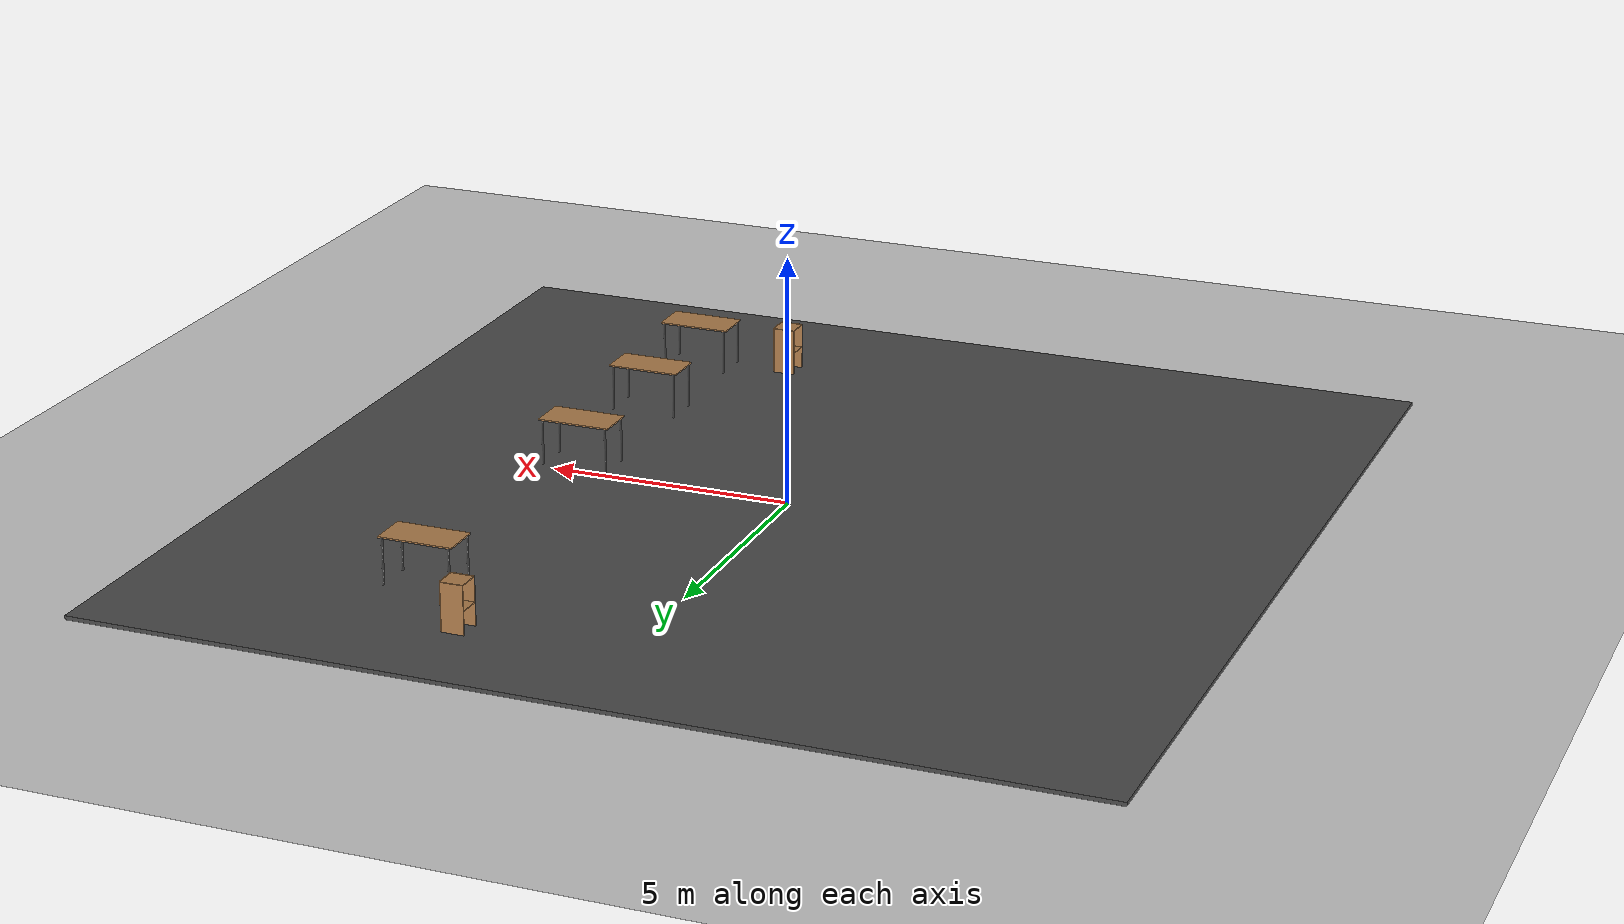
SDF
<sdf version="1.7">
 <world name="default">
  <model name="ground_plane">
   <static>1</static>
   <link name="link">
    <collision name="collision">
     <geometry><plane><normal>0 0 1</normal><size>100 100</size></plane></geometry>
     <surface>
      <contact><collide_bitmask>65535</collide_bitmask></contact>
      <friction><ode><mu>100</mu><mu2>50</mu2></ode></friction>
     </surface>
    </collision>
    <visual name="visual">
     <cast_shadows>0</cast_shadows>
     <geometry><plane><normal>0 0 1</normal><size>100 100</size></plane></geometry>
     <material>
      <script><uri>file://media/materials/scripts/gazebo.material</uri><name>Gazebo/Grey</name></script>
     </material>
    </visual>
   </link>
  </model>
  <model name="asphalt_plane">
   <static>1</static>
   <link name="link">
    <collision name="collision"><geometry><box><size>20 20 0.1</size></box></geometry></collision>
    <visual name="visual">
     <cast_shadows>0</cast_shadows>
     <geometry><box><size>20 20 0.1</size></box></geometry>
     <material>
      <script>
       <uri>model://asphalt_plane/materials/scripts</uri>
       <uri>model://asphalt_plane/materials/textures</uri>
       <name>vrc/asphalt</name>
      </script>
     </material>
    </visual>
   </link>
   <pose>0.032164 -0.016772 0 0 -0 0</pose>
  </model>
  <model name="cabinet_0">
   <static>1</static>
   <link name="cabinet_bottom_plate">
    <inertial>
     <pose>0 0 -1 0 -0 0</pose>
     <inertia><ixx>2.05</ixx><ixy>0</ixy><ixz>0</ixz><iyy>2.05</iyy><iyz>0</iyz><izz>2.05</izz></inertia>
     <mass>25</mass>
    </inertial>
    <collision name="cabinet_bottom_plate_geom">
     <pose>0 0 0.01 0 -0 0</pose>
     <geometry><box><size>0.45 0.45 0.02</size></box></geometry>
    </collision>
    <visual name="cabinet_bottom_plate_geom_visual">
     <pose>0 0 0.01 0 -0 0</pose>
     <geometry><box><size>0.45 0.45 0.02</size></box></geometry>
     <material>
      <script><uri>file://media/materials/scripts/gazebo.material</uri><name>Gazebo/Wood</name></script>
     </material>
    </visual>
    <collision name="cabinet_bottom_plate_geom_cabinet_back_plate">
     <pose>0.235 0 0.51 0 -0 0</pose>
     <geometry><box><size>0.02 0.45 1.02</size></box></geometry>
    </collision>
    <visual name="cabinet_bottom_plate_geom_cabinet_back_plate_visual">
     <pose>0.235 0 0.51 0 -0 0</pose>
     <geometry><box><size>0.02 0.45 1.02</size></box></geometry>
     <material>
      <script><uri>file://media/materials/scripts/gazebo.material</uri><name>Gazebo/Wood</name></script>
     </material>
    </visual>
    <collision name="cabinet_bottom_plate_geom_cabinet_left_plate">
     <pose>0 0.235 0.51 0 -0 0</pose>
     <geometry><box><size>0.45 0.02 1.02</size></box></geometry>
    </collision>
    <visual name="cabinet_bottom_plate_geom_cabinet_left_plate_visual">
     <pose>0 0.235 0.51 0 -0 0</pose>
     <geometry><box><size>0.45 0.02 1.02</size></box></geometry>
     <material>
      <script><uri>file://media/materials/scripts/gazebo.material</uri><name>Gazebo/Wood</name></script>
     </material>
    </visual>
    <collision name="cabinet_bottom_plate_geom_cabinet_middle_plate">
     <pose>0 0 0.51 0 -0 0</pose>
     <geometry><box><size>0.45 0.45 0.02</size></box></geometry>
    </collision>
    <visual name="cabinet_bottom_plate_geom_cabinet_middle_plate_visual">
     <pose>0 0 0.51 0 -0 0</pose>
     <geometry><box><size>0.45 0.45 0.02</size></box></geometry>
     <material>
      <script><uri>file://media/materials/scripts/gazebo.material</uri><name>Gazebo/Wood</name></script>
     </material>
    </visual>
    <collision name="cabinet_bottom_plate_geom_cabinet_right_plate">
     <pose>0 -0.235 0.51 0 -0 0</pose>
     <geometry><box><size>0.45 0.02 1.02</size></box></geometry>
    </collision>
    <visual name="cabinet_bottom_plate_geom_cabinet_right_plate_visual">
     <pose>0 -0.235 0.51 0 -0 0</pose>
     <geometry><box><size>0.45 0.02 1.02</size></box></geometry>
     <material>
      <script><uri>file://media/materials/scripts/gazebo.material</uri><name>Gazebo/Wood</name></script>
     </material>
    </visual>
    <collision name="cabinet_bottom_plate_geom_cabinet_top_plate">
     <pose>0 0 1.01 0 -0 0</pose>
     <geometry><box><size>0.45 0.45 0.02</size></box></geometry>
    </collision>
    <visual name="cabinet_bottom_plate_geom_cabinet_top_plate_visual">
     <pose>0 0 1.01 0 -0 0</pose>
     <geometry><box><size>0.45 0.45 0.02</size></box></geometry>
     <material>
      <script><uri>file://media/materials/scripts/gazebo.material</uri><name>Gazebo/Wood</name></script>
     </material>
    </visual>
   </link>
   <pose>2.81784 -6.99702 0 0 -0 0</pose>
  </model>
  <model name="cabinet_2">
   <static>1</static>
   <link name="cabinet_bottom_plate">
    <inertial>
     <pose>0 0 -1 0 -0 0</pose>
     <inertia><ixx>2.05</ixx><ixy>0</ixy><ixz>0</ixz><iyy>2.05</iyy><iyz>0</iyz><izz>2.05</izz></inertia>
     <mass>25</mass>
    </inertial>
    <collision name="cabinet_bottom_plate_geom">
     <pose>0 0 0.01 0 -0 0</pose>
     <geometry><box><size>0.45 0.45 0.02</size></box></geometry>
    </collision>
    <visual name="cabinet_bottom_plate_geom_visual">
     <pose>0 0 0.01 0 -0 0</pose>
     <geometry><box><size>0.45 0.45 0.02</size></box></geometry>
     <material>
      <script><uri>file://media/materials/scripts/gazebo.material</uri><name>Gazebo/Wood</name></script>
     </material>
    </visual>
    <collision name="cabinet_bottom_plate_geom_cabinet_back_plate">
     <pose>0.235 0 0.51 0 -0 0</pose>
     <geometry><box><size>0.02 0.45 1.02</size></box></geometry>
    </collision>
    <visual name="cabinet_bottom_plate_geom_cabinet_back_plate_visual">
     <pose>0.235 0 0.51 0 -0 0</pose>
     <geometry><box><size>0.02 0.45 1.02</size></box></geometry>
     <material>
      <script><uri>file://media/materials/scripts/gazebo.material</uri><name>Gazebo/Wood</name></script>
     </material>
    </visual>
    <collision name="cabinet_bottom_plate_geom_cabinet_left_plate">
     <pose>0 0.235 0.51 0 -0 0</pose>
     <geometry><box><size>0.45 0.02 1.02</size></box></geometry>
    </collision>
    <visual name="cabinet_bottom_plate_geom_cabinet_left_plate_visual">
     <pose>0 0.235 0.51 0 -0 0</pose>
     <geometry><box><size>0.45 0.02 1.02</size></box></geometry>
     <material>
      <script><uri>file://media/materials/scripts/gazebo.material</uri><name>Gazebo/Wood</name></script>
     </material>
    </visual>
    <collision name="cabinet_bottom_plate_geom_cabinet_middle_plate">
     <pose>0 0 0.51 0 -0 0</pose>
     <geometry><box><size>0.45 0.45 0.02</size></box></geometry>
    </collision>
    <visual name="cabinet_bottom_plate_geom_cabinet_middle_plate_visual">
     <pose>0 0 0.51 0 -0 0</pose>
     <geometry><box><size>0.45 0.45 0.02</size></box></geometry>
     <material>
      <script><uri>file://media/materials/scripts/gazebo.material</uri><name>Gazebo/Wood</name></script>
     </material>
    </visual>
    <collision name="cabinet_bottom_plate_geom_cabinet_right_plate">
     <pose>0 -0.235 0.51 0 -0 0</pose>
     <geometry><box><size>0.45 0.02 1.02</size></box></geometry>
    </collision>
    <visual name="cabinet_bottom_plate_geom_cabinet_right_plate_visual">
     <pose>0 -0.235 0.51 0 -0 0</pose>
     <geometry><box><size>0.45 0.02 1.02</size></box></geometry>
     <material>
      <script><uri>file://media/materials/scripts/gazebo.material</uri><name>Gazebo/Wood</name></script>
     </material>
    </visual>
    <collision name="cabinet_bottom_plate_geom_cabinet_top_plate">
     <pose>0 0 1.01 0 -0 0</pose>
     <geometry><box><size>0.45 0.45 0.02</size></box></geometry>
    </collision>
    <visual name="cabinet_bottom_plate_geom_cabinet_top_plate_visual">
     <pose>0 0 1.01 0 -0 0</pose>
     <geometry><box><size>0.45 0.45 0.02</size></box></geometry>
     <material>
      <script><uri>file://media/materials/scripts/gazebo.material</uri><name>Gazebo/Wood</name></script>
     </material>
    </visual>
   </link>
   <pose>3.17277 7.84025 0 0 -0 0</pose>
  </model>
  <model name="table_14">
   <static>1</static>
   <link name="link">
    <collision name="surface">
     <pose>0 0 1 0 -0 0</pose>
     <geometry><box><size>1.5 0.8 0.03</size></box></geometry>
     <surface><friction><ode><mu>0.6</mu><mu2>0.6</mu2></ode></friction></surface>
    </collision>
    <visual name="visual1">
     <pose>0 0 1 0 -0 0</pose>
     <geometry><box><size>1.5 0.8 0.03</size></box></geometry>
     <material>
      <script><uri>file://media/materials/scripts/gazebo.material</uri><name>Gazebo/Wood</name></script>
     </material>
    </visual>
    <collision name="front_left_leg">
     <pose>0.68 0.38 0.5 0 -0 0</pose>
     <geometry><cylinder><radius>0.02</radius><length>1</length></cylinder></geometry>
    </collision>
    <visual name="front_left_leg">
     <pose>0.68 0.38 0.5 0 -0 0</pose>
     <geometry><cylinder><radius>0.02</radius><length>1</length></cylinder></geometry>
     <material>
      <script><uri>file://media/materials/scripts/gazebo.material</uri><name>Gazebo/Grey</name></script>
     </material>
    </visual>
    <collision name="front_right_leg">
     <pose>0.68 -0.38 0.5 0 -0 0</pose>
     <geometry><cylinder><radius>0.02</radius><length>1</length></cylinder></geometry>
    </collision>
    <visual name="front_right_leg">
     <pose>0.68 -0.38 0.5 0 -0 0</pose>
     <geometry><cylinder><radius>0.02</radius><length>1</length></cylinder></geometry>
     <material>
      <script><uri>file://media/materials/scripts/gazebo.material</uri><name>Gazebo/Grey</name></script>
     </material>
    </visual>
    <collision name="back_right_leg">
     <pose>-0.68 -0.38 0.5 0 -0 0</pose>
     <geometry><cylinder><radius>0.02</radius><length>1</length></cylinder></geometry>
    </collision>
    <visual name="back_right_leg">
     <pose>-0.68 -0.38 0.5 0 -0 0</pose>
     <geometry><cylinder><radius>0.02</radius><length>1</length></cylinder></geometry>
     <material>
      <script><uri>file://media/materials/scripts/gazebo.material</uri><name>Gazebo/Grey</name></script>
     </material>
    </visual>
    <collision name="back_left_leg">
     <pose>-0.68 0.38 0.5 0 -0 0</pose>
     <geometry><cylinder><radius>0.02</radius><length>1</length></cylinder></geometry>
    </collision>
    <visual name="back_left_leg">
     <pose>-0.68 0.38 0.5 0 -0 0</pose>
     <geometry><cylinder><radius>0.02</radius><length>1</length></cylinder></geometry>
     <material>
      <script><uri>file://media/materials/scripts/gazebo.material</uri><name>Gazebo/Grey</name></script>
     </material>
    </visual>
   </link>
   <pose>4.67374 -6.63845 0 0 -0 0</pose>
  </model>
  <model name="table_15">
   <static>1</static>
   <link name="link">
    <collision name="surface">
     <pose>0 0 1 0 -0 0</pose>
     <geometry><box><size>1.5 0.8 0.03</size></box></geometry>
     <surface><friction><ode><mu>0.6</mu><mu2>0.6</mu2></ode></friction></surface>
    </collision>
    <visual name="visual1">
     <pose>0 0 1 0 -0 0</pose>
     <geometry><box><size>1.5 0.8 0.03</size></box></geometry>
     <material>
      <script><uri>file://media/materials/scripts/gazebo.material</uri><name>Gazebo/Wood</name></script>
     </material>
    </visual>
    <collision name="front_left_leg">
     <pose>0.68 0.38 0.5 0 -0 0</pose>
     <geometry><cylinder><radius>0.02</radius><length>1</length></cylinder></geometry>
    </collision>
    <visual name="front_left_leg">
     <pose>0.68 0.38 0.5 0 -0 0</pose>
     <geometry><cylinder><radius>0.02</radius><length>1</length></cylinder></geometry>
     <material>
      <script><uri>file://media/materials/scripts/gazebo.material</uri><name>Gazebo/Grey</name></script>
     </material>
    </visual>
    <collision name="front_right_leg">
     <pose>0.68 -0.38 0.5 0 -0 0</pose>
     <geometry><cylinder><radius>0.02</radius><length>1</length></cylinder></geometry>
    </collision>
    <visual name="front_right_leg">
     <pose>0.68 -0.38 0.5 0 -0 0</pose>
     <geometry><cylinder><radius>0.02</radius><length>1</length></cylinder></geometry>
     <material>
      <script><uri>file://media/materials/scripts/gazebo.material</uri><name>Gazebo/Grey</name></script>
     </material>
    </visual>
    <collision name="back_right_leg">
     <pose>-0.68 -0.38 0.5 0 -0 0</pose>
     <geometry><cylinder><radius>0.02</radius><length>1</length></cylinder></geometry>
    </collision>
    <visual name="back_right_leg">
     <pose>-0.68 -0.38 0.5 0 -0 0</pose>
     <geometry><cylinder><radius>0.02</radius><length>1</length></cylinder></geometry>
     <material>
      <script><uri>file://media/materials/scripts/gazebo.material</uri><name>Gazebo/Grey</name></script>
     </material>
    </visual>
    <collision name="back_left_leg">
     <pose>-0.68 0.38 0.5 0 -0 0</pose>
     <geometry><cylinder><radius>0.02</radius><length>1</length></cylinder></geometry>
    </collision>
    <visual name="back_left_leg">
     <pose>-0.68 0.38 0.5 0 -0 0</pose>
     <geometry><cylinder><radius>0.02</radius><length>1</length></cylinder></geometry>
     <material>
      <script><uri>file://media/materials/scripts/gazebo.material</uri><name>Gazebo/Grey</name></script>
     </material>
    </visual>
   </link>
   <pose>4.58218 -3.78897 0 0 -0 0</pose>
  </model>
  <model name="table_16">
   <static>1</static>
   <link name="link">
    <collision name="surface">
     <pose>0 0 1 0 -0 0</pose>
     <geometry><box><size>1.5 0.8 0.03</size></box></geometry>
     <surface><friction><ode><mu>0.6</mu><mu2>0.6</mu2></ode></friction></surface>
    </collision>
    <visual name="visual1">
     <pose>0 0 1 0 -0 0</pose>
     <geometry><box><size>1.5 0.8 0.03</size></box></geometry>
     <material>
      <script><uri>file://media/materials/scripts/gazebo.material</uri><name>Gazebo/Wood</name></script>
     </material>
    </visual>
    <collision name="front_left_leg">
     <pose>0.68 0.38 0.5 0 -0 0</pose>
     <geometry><cylinder><radius>0.02</radius><length>1</length></cylinder></geometry>
    </collision>
    <visual name="front_left_leg">
     <pose>0.68 0.38 0.5 0 -0 0</pose>
     <geometry><cylinder><radius>0.02</radius><length>1</length></cylinder></geometry>
     <material>
      <script><uri>file://media/materials/scripts/gazebo.material</uri><name>Gazebo/Grey</name></script>
     </material>
    </visual>
    <collision name="front_right_leg">
     <pose>0.68 -0.38 0.5 0 -0 0</pose>
     <geometry><cylinder><radius>0.02</radius><length>1</length></cylinder></geometry>
    </collision>
    <visual name="front_right_leg">
     <pose>0.68 -0.38 0.5 0 -0 0</pose>
     <geometry><cylinder><radius>0.02</radius><length>1</length></cylinder></geometry>
     <material>
      <script><uri>file://media/materials/scripts/gazebo.material</uri><name>Gazebo/Grey</name></script>
     </material>
    </visual>
    <collision name="back_right_leg">
     <pose>-0.68 -0.38 0.5 0 -0 0</pose>
     <geometry><cylinder><radius>0.02</radius><length>1</length></cylinder></geometry>
    </collision>
    <visual name="back_right_leg">
     <pose>-0.68 -0.38 0.5 0 -0 0</pose>
     <geometry><cylinder><radius>0.02</radius><length>1</length></cylinder></geometry>
     <material>
      <script><uri>file://media/materials/scripts/gazebo.material</uri><name>Gazebo/Grey</name></script>
     </material>
    </visual>
    <collision name="back_left_leg">
     <pose>-0.68 0.38 0.5 0 -0 0</pose>
     <geometry><cylinder><radius>0.02</radius><length>1</length></cylinder></geometry>
    </collision>
    <visual name="back_left_leg">
     <pose>-0.68 0.38 0.5 0 -0 0</pose>
     <geometry><cylinder><radius>0.02</radius><length>1</length></cylinder></geometry>
     <material>
      <script><uri>file://media/materials/scripts/gazebo.material</uri><name>Gazebo/Grey</name></script>
     </material>
    </visual>
   </link>
   <pose>4.57336 -0.40213 0 0 -0 0</pose>
  </model>
  <model name="table_18">
   <static>1</static>
   <link name="link">
    <collision name="surface">
     <pose>0 0 1 0 -0 0</pose>
     <geometry><box><size>1.5 0.8 0.03</size></box></geometry>
     <surface><friction><ode><mu>0.6</mu><mu2>0.6</mu2></ode></friction></surface>
    </collision>
    <visual name="visual1">
     <pose>0 0 1 0 -0 0</pose>
     <geometry><box><size>1.5 0.8 0.03</size></box></geometry>
     <material>
      <script><uri>file://media/materials/scripts/gazebo.material</uri><name>Gazebo/Wood</name></script>
     </material>
    </visual>
    <collision name="front_left_leg">
     <pose>0.68 0.38 0.5 0 -0 0</pose>
     <geometry><cylinder><radius>0.02</radius><length>1</length></cylinder></geometry>
    </collision>
    <visual name="front_left_leg">
     <pose>0.68 0.38 0.5 0 -0 0</pose>
     <geometry><cylinder><radius>0.02</radius><length>1</length></cylinder></geometry>
     <material>
      <script><uri>file://media/materials/scripts/gazebo.material</uri><name>Gazebo/Grey</name></script>
     </material>
    </visual>
    <collision name="front_right_leg">
     <pose>0.68 -0.38 0.5 0 -0 0</pose>
     <geometry><cylinder><radius>0.02</radius><length>1</length></cylinder></geometry>
    </collision>
    <visual name="front_right_leg">
     <pose>0.68 -0.38 0.5 0 -0 0</pose>
     <geometry><cylinder><radius>0.02</radius><length>1</length></cylinder></geometry>
     <material>
      <script><uri>file://media/materials/scripts/gazebo.material</uri><name>Gazebo/Grey</name></script>
     </material>
    </visual>
    <collision name="back_right_leg">
     <pose>-0.68 -0.38 0.5 0 -0 0</pose>
     <geometry><cylinder><radius>0.02</radius><length>1</length></cylinder></geometry>
    </collision>
    <visual name="back_right_leg">
     <pose>-0.68 -0.38 0.5 0 -0 0</pose>
     <geometry><cylinder><radius>0.02</radius><length>1</length></cylinder></geometry>
     <material>
      <script><uri>file://media/materials/scripts/gazebo.material</uri><name>Gazebo/Grey</name></script>
     </material>
    </visual>
    <collision name="back_left_leg">
     <pose>-0.68 0.38 0.5 0 -0 0</pose>
     <geometry><cylinder><radius>0.02</radius><length>1</length></cylinder></geometry>
    </collision>
    <visual name="back_left_leg">
     <pose>-0.68 0.38 0.5 0 -0 0</pose>
     <geometry><cylinder><radius>0.02</radius><length>1</length></cylinder></geometry>
     <material>
      <script><uri>file://media/materials/scripts/gazebo.material</uri><name>Gazebo/Grey</name></script>
     </material>
    </visual>
   </link>
   <pose>4.66862 6.20178 0 0 -0 0</pose>
  </model>
 </world>
</sdf>
